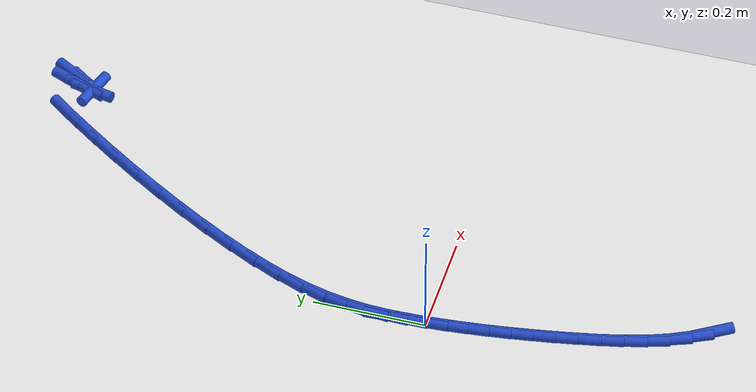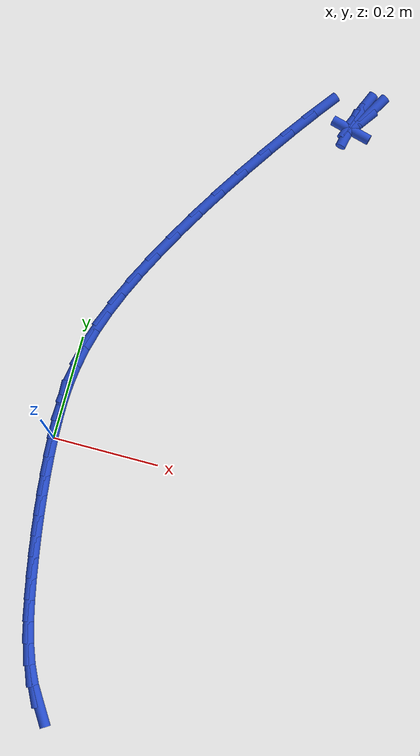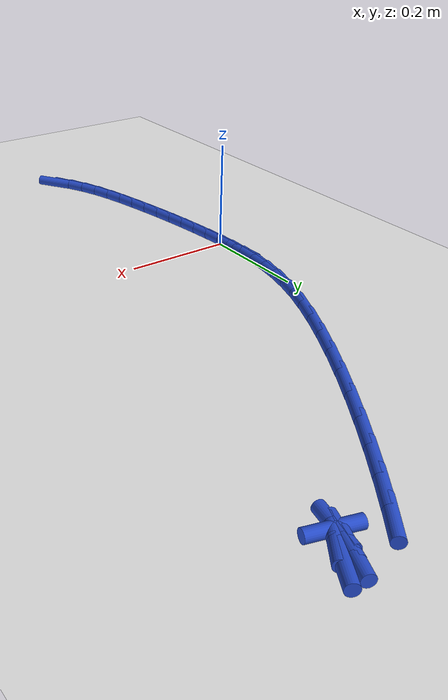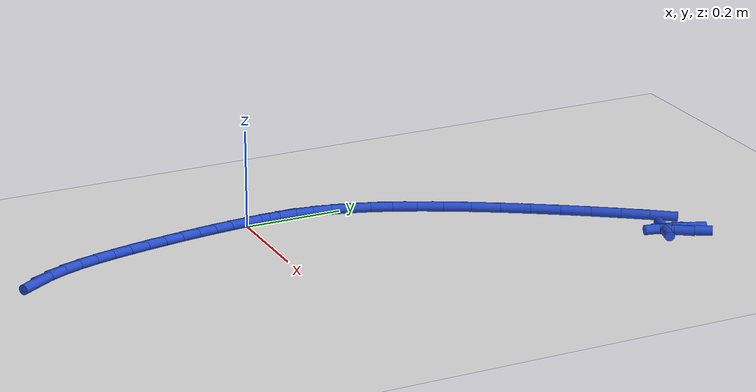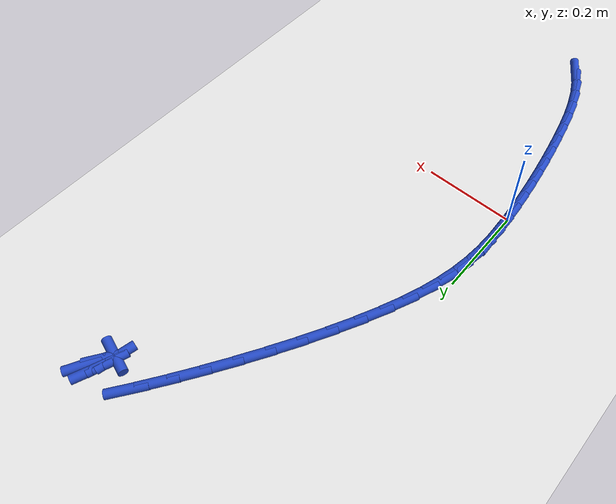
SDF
<sdf version="1.6">
 <world name="default">
  <model name="ground_plane">
   <static>1</static>
   <link name="link">
    <collision name="collision">
     <geometry><plane><normal>0 0 1</normal><size>100 100</size></plane></geometry>
     <surface><friction><ode><mu>100</mu><mu2>50</mu2></ode></friction></surface>
    </collision>
    <visual name="visual">
     <cast_shadows>0</cast_shadows>
     <geometry><plane><normal>0 0 1</normal><size>100 100</size></plane></geometry>
     <material>
      <script><uri>file://media/materials/scripts/gazebo.material</uri><name>Gazebo/WhiteGlow</name></script>
     </material>
    </visual>
   </link>
  </model>
  <model name="line">
   <link name="link_0">
    <pose>2.0721814021629203e-17 4.163336342344337e-17 0.01 0 1.57 -1.5221960477817953</pose>
    <collision name="collision">
     <geometry><cylinder><radius>0.01</radius><length>0.08</length></cylinder></geometry>
    </collision>
    <visual name="visual">
     <material>
      <script><name>Gazebo/Blue</name><uri>file://media/materials/scripts/gazebo.material</uri></script>
     </material>
     <geometry><cylinder><radius>0.01</radius><length>0.08</length></cylinder></geometry>
    </visual>
   </link>
   <link name="link_1">
    <pose>-0.0016862516358424058 0.03466901478903752 0.01 0 1.57 -1.5606301533697617</pose>
    <collision name="collision">
     <geometry><cylinder><radius>0.01</radius><length>0.08</length></cylinder></geometry>
    </collision>
    <visual name="visual">
     <material>
      <script><name>Gazebo/Blue</name><uri>file://media/materials/scripts/gazebo.material</uri></script>
     </material>
     <geometry><cylinder><radius>0.01</radius><length>0.08</length></cylinder></geometry>
    </visual>
   </link>
   <link name="link_2">
    <pose>-0.0020366260753943615 0.06913255916225572 0.01 0 1.57 1.5277477523856136</pose>
    <collision name="collision">
     <geometry><cylinder><radius>0.01</radius><length>0.08</length></cylinder></geometry>
    </collision>
    <visual name="visual">
     <material>
      <script><name>Gazebo/Blue</name><uri>file://media/materials/scripts/gazebo.material</uri></script>
     </material>
     <geometry><cylinder><radius>0.01</radius><length>0.08</length></cylinder></geometry>
    </visual>
   </link>
   <link name="link_3">
    <pose>-0.0005349769415345087 0.10399367666121621 0.01 0 1.57 1.4633028487802766</pose>
    <collision name="collision">
     <geometry><cylinder><radius>0.01</radius><length>0.08</length></cylinder></geometry>
    </collision>
    <visual name="visual">
     <material>
      <script><name>Gazebo/Blue</name><uri>file://media/materials/scripts/gazebo.material</uri></script>
     </material>
     <geometry><cylinder><radius>0.01</radius><length>0.08</length></cylinder></geometry>
    </visual>
   </link>
   <link name="link_4">
    <pose>0.003334842142858487 0.13985541082748057 0.01 0 1.57 1.3924354433942654</pose>
    <collision name="collision">
     <geometry><cylinder><radius>0.01</radius><length>0.08</length></cylinder></geometry>
    </collision>
    <visual name="visual">
     <material>
      <script><name>Gazebo/Blue</name><uri>file://media/materials/scripts/gazebo.material</uri></script>
     </material>
     <geometry><cylinder><radius>0.01</radius><length>0.08</length></cylinder></geometry>
    </visual>
   </link>
   <link name="link_5">
    <pose>0.010088977554905957 0.1773208052026104 0.01 0 1.57 1.3202131406118476</pose>
    <collision name="collision">
     <geometry><cylinder><radius>0.01</radius><length>0.08</length></cylinder></geometry>
    </collision>
    <visual name="visual">
     <material>
      <script><name>Gazebo/Blue</name><uri>file://media/materials/scripts/gazebo.material</uri></script>
     </material>
     <geometry><cylinder><radius>0.01</radius><length>0.08</length></cylinder></geometry>
    </visual>
   </link>
   <link name="link_6">
    <pose>0.02024357567172924 0.21699290332816729 0.01 0 1.57 1.250941128274026</pose>
    <collision name="collision">
     <geometry><cylinder><radius>0.01</radius><length>0.08</length></cylinder></geometry>
    </collision>
    <visual name="visual">
     <material>
      <script><name>Gazebo/Blue</name><uri>file://media/materials/scripts/gazebo.material</uri></script>
     </material>
     <geometry><cylinder><radius>0.01</radius><length>0.08</length></cylinder></geometry>
    </visual>
   </link>
   <link name="link_7">
    <pose>0.034314782269369085 0.25947474802827686 0.01 0 1.57 1.1894129266577556</pose>
    <collision name="collision">
     <geometry><cylinder><radius>0.01</radius><length>0.08</length></cylinder></geometry>
    </collision>
    <visual name="visual">
     <material>
      <script><name>Gazebo/Blue</name><uri>file://media/materials/scripts/gazebo.material</uri></script>
     </material>
     <geometry><cylinder><radius>0.01</radius><length>0.08</length></cylinder></geometry>
    </visual>
   </link>
   <link name="link_8">
    <pose>0.05262808580988069 0.3051418179813442 0.01 0 1.57 1.1412424033178985</pose>
    <collision name="collision">
     <geometry><cylinder><radius>0.01</radius><length>0.08</length></cylinder></geometry>
    </collision>
    <visual name="visual">
     <material>
      <script><name>Gazebo/Blue</name><uri>file://media/materials/scripts/gazebo.material</uri></script>
     </material>
     <geometry><cylinder><radius>0.01</radius><length>0.08</length></cylinder></geometry>
    </visual>
   </link>
   <link name="link_9">
    <pose>0.07477963477600573 0.35349906859098795 0.01 0 1.57 1.1033511119911708</pose>
    <collision name="collision">
     <geometry><cylinder><radius>0.01</radius><length>0.08</length></cylinder></geometry>
    </collision>
    <visual name="visual">
     <material>
      <script><name>Gazebo/Blue</name><uri>file://media/materials/scripts/gazebo.material</uri></script>
     </material>
     <geometry><cylinder><radius>0.01</radius><length>0.08</length></cylinder></geometry>
    </visual>
   </link>
   <link name="link_10">
    <pose>0.10019120475483431 0.4038433278189455 0.01 0 1.57 1.0724564933578629</pose>
    <collision name="collision">
     <geometry><cylinder><radius>0.01</radius><length>0.08</length></cylinder></geometry>
    </collision>
    <visual name="visual">
     <material>
      <script><name>Gazebo/Blue</name><uri>file://media/materials/scripts/gazebo.material</uri></script>
     </material>
     <geometry><cylinder><radius>0.01</radius><length>0.08</length></cylinder></geometry>
    </visual>
   </link>
   <link name="link_11">
    <pose>0.1282845713334565 0.45547142362695414 0.01 0 1.57 1.0464193403920221</pose>
    <collision name="collision">
     <geometry><cylinder><radius>0.01</radius><length>0.08</length></cylinder></geometry>
    </collision>
    <visual name="visual">
     <material>
      <script><name>Gazebo/Blue</name><uri>file://media/materials/scripts/gazebo.material</uri></script>
     </material>
     <geometry><cylinder><radius>0.01</radius><length>0.08</length></cylinder></geometry>
    </visual>
   </link>
   <link name="link_12">
    <pose>0.15848151009896239 0.5076801839767512 0.01 0 1.57 1.0237608191480843</pose>
    <collision name="collision">
     <geometry><cylinder><radius>0.01</radius><length>0.08</length></cylinder></geometry>
    </collision>
    <visual name="visual">
     <material>
      <script><name>Gazebo/Blue</name><uri>file://media/materials/scripts/gazebo.material</uri></script>
     </material>
     <geometry><cylinder><radius>0.01</radius><length>0.08</length></cylinder></geometry>
    </visual>
   </link>
   <link name="link_13">
    <pose>0.19020379663844192 0.5597664368300735 0.01 0 1.57 1.0033864025507215</pose>
    <collision name="collision">
     <geometry><cylinder><radius>0.01</radius><length>0.08</length></cylinder></geometry>
    </collision>
    <visual name="visual">
     <material>
      <script><name>Gazebo/Blue</name><uri>file://media/materials/scripts/gazebo.material</uri></script>
     </material>
     <geometry><cylinder><radius>0.01</radius><length>0.08</length></cylinder></geometry>
    </visual>
   </link>
   <link name="link_14">
    <pose>0.22287320653898524 0.6110270101486587 0.01 0 1.57 0.9844126843384529</pose>
    <collision name="collision">
     <geometry><cylinder><radius>0.01</radius><length>0.08</length></cylinder></geometry>
    </collision>
    <visual name="visual">
     <material>
      <script><name>Gazebo/Blue</name><uri>file://media/materials/scripts/gazebo.material</uri></script>
     </material>
     <geometry><cylinder><radius>0.01</radius><length>0.08</length></cylinder></geometry>
    </visual>
   </link>
   <link name="link_15">
    <pose>0.2559115153876824 0.660758731894244 0.01 0 1.57 0.9660408560285011</pose>
    <collision name="collision">
     <geometry><cylinder><radius>0.01</radius><length>0.08</length></cylinder></geometry>
    </collision>
    <visual name="visual">
     <material>
      <script><name>Gazebo/Blue</name><uri>file://media/materials/scripts/gazebo.material</uri></script>
     </material>
     <geometry><cylinder><radius>0.01</radius><length>0.08</length></cylinder></geometry>
    </visual>
   </link>
   <link name="link_16">
    <pose>0.28874049877162355 0.7082584300285664 0.01 0 1.57 0.9474387387243113</pose>
    <collision name="collision">
     <geometry><cylinder><radius>0.01</radius><length>0.08</length></cylinder></geometry>
    </collision>
    <visual name="visual">
     <material>
      <script><name>Gazebo/Blue</name><uri>file://media/materials/scripts/gazebo.material</uri></script>
     </material>
     <geometry><cylinder><radius>0.01</radius><length>0.08</length></cylinder></geometry>
    </visual>
   </link>
   <link name="link_17">
    <pose>0.3207819322778985 0.752822932513363 0.01 0 1.57 0.9275914956249187</pose>
    <collision name="collision">
     <geometry><cylinder><radius>0.01</radius><length>0.08</length></cylinder></geometry>
    </collision>
    <visual name="visual">
     <material>
      <script><name>Gazebo/Blue</name><uri>file://media/materials/scripts/gazebo.material</uri></script>
     </material>
     <geometry><cylinder><radius>0.01</radius><length>0.08</length></cylinder></geometry>
    </visual>
   </link>
   <link name="link_30">
    <pose>0.4175573684938185 0.7720504553694052 0.01 0 1.57 1.0495907408312326</pose>
    <collision name="collision">
     <geometry><cylinder><radius>0.01</radius><length>0.08</length></cylinder></geometry>
    </collision>
    <visual name="visual">
     <material>
      <script><name>Gazebo/Blue</name><uri>file://media/materials/scripts/gazebo.material</uri></script>
     </material>
     <geometry><cylinder><radius>0.01</radius><length>0.08</length></cylinder></geometry>
    </visual>
   </link>
   <link name="link_31">
    <pose>0.40026678510043573 0.7419360785899481 0.01 0 1.57 0.9519673105431965</pose>
    <collision name="collision">
     <geometry><cylinder><radius>0.01</radius><length>0.08</length></cylinder></geometry>
    </collision>
    <visual name="visual">
     <material>
      <script><name>Gazebo/Blue</name><uri>file://media/materials/scripts/gazebo.material</uri></script>
     </material>
     <geometry><cylinder><radius>0.01</radius><length>0.08</length></cylinder></geometry>
    </visual>
   </link>
   <link name="link_32">
    <pose>0.38894983859831506 0.726044675515083 0.01 0 1.57 -0.2719744744640523</pose>
    <collision name="collision">
     <geometry><cylinder><radius>0.01</radius><length>0.08</length></cylinder></geometry>
    </collision>
    <visual name="visual">
     <material>
      <script><name>Gazebo/Blue</name><uri>file://media/materials/scripts/gazebo.material</uri></script>
     </material>
     <geometry><cylinder><radius>0.01</radius><length>0.08</length></cylinder></geometry>
    </visual>
   </link>
   <link name="link_33">
    <pose>0.38530254700189565 0.7270618504696597 0.01 0 1.57 1.3545416241763109</pose>
    <collision name="collision">
     <geometry><cylinder><radius>0.01</radius><length>0.08</length></cylinder></geometry>
    </collision>
    <visual name="visual">
     <material>
      <script><name>Gazebo/Blue</name><uri>file://media/materials/scripts/gazebo.material</uri></script>
     </material>
     <geometry><cylinder><radius>0.01</radius><length>0.08</length></cylinder></geometry>
    </visual>
   </link>
   <link name="link_34">
    <pose>0.3887319720929825 0.7426721347979673 0.01 0 1.57 1.2303765464891425</pose>
    <collision name="collision">
     <geometry><cylinder><radius>0.01</radius><length>0.08</length></cylinder></geometry>
    </collision>
    <visual name="visual">
     <material>
      <script><name>Gazebo/Blue</name><uri>file://media/materials/scripts/gazebo.material</uri></script>
     </material>
     <geometry><cylinder><radius>0.01</radius><length>0.08</length></cylinder></geometry>
    </visual>
   </link>
   <link name="link_35">
    <pose>0.39849018847131423 0.7702214329201479 0.01 0 1.57 1.1762020324536666</pose>
    <collision name="collision">
     <geometry><cylinder><radius>0.01</radius><length>0.08</length></cylinder></geometry>
    </collision>
    <visual name="visual">
     <material>
      <script><name>Gazebo/Blue</name><uri>file://media/materials/scripts/gazebo.material</uri></script>
     </material>
     <geometry><cylinder><radius>0.01</radius><length>0.08</length></cylinder></geometry>
    </visual>
   </link>
   <link name="link_227">
    <pose>0.11107693716835519 -0.47293077264494005 0.01 0 1.57 -1.0057585121942003</pose>
    <collision name="collision">
     <geometry><cylinder><radius>0.01</radius><length>0.08</length></cylinder></geometry>
    </collision>
    <visual name="visual">
     <material>
      <script><name>Gazebo/Blue</name><uri>file://media/materials/scripts/gazebo.material</uri></script>
     </material>
     <geometry><cylinder><radius>0.01</radius><length>0.08</length></cylinder></geometry>
    </visual>
   </link>
   <link name="link_228">
    <pose>0.09144050160352846 -0.441957980353312 0.01 0 1.57 -1.1218049921289097</pose>
    <collision name="collision">
     <geometry><cylinder><radius>0.01</radius><length>0.08</length></cylinder></geometry>
    </collision>
    <visual name="visual">
     <material>
      <script><name>Gazebo/Blue</name><uri>file://media/materials/scripts/gazebo.material</uri></script>
     </material>
     <geometry><cylinder><radius>0.01</radius><length>0.08</length></cylinder></geometry>
    </visual>
   </link>
   <link name="link_229">
    <pose>0.075275684926083 -0.40840790541877275 0.01 0 1.57 -1.2142880719714424</pose>
    <collision name="collision">
     <geometry><cylinder><radius>0.01</radius><length>0.08</length></cylinder></geometry>
    </collision>
    <visual name="visual">
     <material>
      <script><name>Gazebo/Blue</name><uri>file://media/materials/scripts/gazebo.material</uri></script>
     </material>
     <geometry><cylinder><radius>0.01</radius><length>0.08</length></cylinder></geometry>
    </visual>
   </link>
   <link name="link_230">
    <pose>0.06202508056725976 -0.3728283262337364 0.01 0 1.57 -1.2849084307810708</pose>
    <collision name="collision">
     <geometry><cylinder><radius>0.01</radius><length>0.08</length></cylinder></geometry>
    </collision>
    <visual name="visual">
     <material>
      <script><name>Gazebo/Blue</name><uri>file://media/materials/scripts/gazebo.material</uri></script>
     </material>
     <geometry><cylinder><radius>0.01</radius><length>0.08</length></cylinder></geometry>
    </visual>
   </link>
   <link name="link_231">
    <pose>0.05113128195830073 -0.33576702119061974 0.01 0 1.57 -1.3358601674941417</pose>
    <collision name="collision">
     <geometry><cylinder><radius>0.01</radius><length>0.08</length></cylinder></geometry>
    </collision>
    <visual name="visual">
     <material>
      <script><name>Gazebo/Blue</name><uri>file://media/materials/scripts/gazebo.material</uri></script>
     </material>
     <geometry><cylinder><radius>0.01</radius><length>0.08</length></cylinder></geometry>
    </visual>
   </link>
   <link name="link_232">
    <pose>0.04203688253044671 -0.29777176868183636 0.01 0 1.57 -1.3689924322918723</pose>
    <collision name="collision">
     <geometry><cylinder><radius>0.01</radius><length>0.08</length></cylinder></geometry>
    </collision>
    <visual name="visual">
     <material>
      <script><name>Gazebo/Blue</name><uri>file://media/materials/scripts/gazebo.material</uri></script>
     </material>
     <geometry><cylinder><radius>0.01</radius><length>0.08</length></cylinder></geometry>
    </visual>
   </link>
   <link name="link_233">
    <pose>0.03418447571493899 -0.25939034709980135 0.01 0 1.57 -1.3880762432259421</pose>
    <collision name="collision">
     <geometry><cylinder><radius>0.01</radius><length>0.08</length></cylinder></geometry>
    </collision>
    <visual name="visual">
     <material>
      <script><name>Gazebo/Blue</name><uri>file://media/materials/scripts/gazebo.material</uri></script>
     </material>
     <geometry><cylinder><radius>0.01</radius><length>0.08</length></cylinder></geometry>
    </visual>
   </link>
   <link name="link_234">
    <pose>0.0271087419693576 -0.22109782437610118 0.01 0 1.57 -1.4046134441222966</pose>
    <collision name="collision">
     <geometry><cylinder><radius>0.01</radius><length>0.08</length></cylinder></geometry>
    </collision>
    <visual name="visual">
     <material>
      <script><name>Gazebo/Blue</name><uri>file://media/materials/scripts/gazebo.material</uri></script>
     </material>
     <geometry><cylinder><radius>0.01</radius><length>0.08</length></cylinder></geometry>
    </visual>
   </link>
   <link name="link_235">
    <pose>0.020729529122816687 -0.18306514637221494 0.01 0 1.57 -1.4216481697125938</pose>
    <collision name="collision">
     <geometry><cylinder><radius>0.01</radius><length>0.08</length></cylinder></geometry>
    </collision>
    <visual name="visual">
     <material>
      <script><name>Gazebo/Blue</name><uri>file://media/materials/scripts/gazebo.material</uri></script>
     </material>
     <geometry><cylinder><radius>0.01</radius><length>0.08</length></cylinder></geometry>
    </visual>
   </link>
   <link name="link_236">
    <pose>0.01506737189747682 -0.14538375816993726 0.01 0 1.57 -1.4393158315246337</pose>
    <collision name="collision">
     <geometry><cylinder><radius>0.01</radius><length>0.08</length></cylinder></geometry>
    </collision>
    <visual name="visual">
     <material>
      <script><name>Gazebo/Blue</name><uri>file://media/materials/scripts/gazebo.material</uri></script>
     </material>
     <geometry><cylinder><radius>0.01</radius><length>0.08</length></cylinder></geometry>
    </visual>
   </link>
   <link name="link_237">
    <pose>0.010142805332931609 -0.10814510460042252 0.01 0 1.57 -1.457766979248189</pose>
    <collision name="collision">
     <geometry><cylinder><radius>0.01</radius><length>0.08</length></cylinder></geometry>
    </collision>
    <visual name="visual">
     <material>
      <script><name>Gazebo/Blue</name><uri>file://media/materials/scripts/gazebo.material</uri></script>
     </material>
     <geometry><cylinder><radius>0.01</radius><length>0.08</length></cylinder></geometry>
    </visual>
   </link>
   <link name="link_238">
    <pose>0.005976364468774571 -0.07144063049482433 0.01 0 1.57 -1.477171510490638</pose>
    <collision name="collision">
     <geometry><cylinder><radius>0.01</radius><length>0.08</length></cylinder></geometry>
    </collision>
    <visual name="visual">
     <material>
      <script><name>Gazebo/Blue</name><uri>file://media/materials/scripts/gazebo.material</uri></script>
     </material>
     <geometry><cylinder><radius>0.01</radius><length>0.08</length></cylinder></geometry>
    </visual>
   </link>
   <link name="link_239">
    <pose>0.0025885843445995495 -0.03536178068429903 0.01 0 1.57 -1.4977237800734942</pose>
    <collision name="collision">
     <geometry><cylinder><radius>0.01</radius><length>0.08</length></cylinder></geometry>
    </collision>
    <visual name="visual">
     <material>
      <script><name>Gazebo/Blue</name><uri>file://media/materials/scripts/gazebo.material</uri></script>
     </material>
     <geometry><cylinder><radius>0.01</radius><length>0.08</length></cylinder></geometry>
    </visual>
   </link>
   <link name="link_240">
    <pose>3.97089045672816e-17 -1.3183898417423734e-16 0.01 0 1.57 -1.5196488970910138</pose>
    <collision name="collision">
     <geometry><cylinder><radius>0.01</radius><length>0.08</length></cylinder></geometry>
    </collision>
    <visual name="visual">
     <material>
      <script><name>Gazebo/Blue</name><uri>file://media/materials/scripts/gazebo.material</uri></script>
     </material>
     <geometry><cylinder><radius>0.01</radius><length>0.08</length></cylinder></geometry>
    </visual>
   </link>
   <link name="link_241">
    <pose>-0.001768853525430339 0.03455326672691791 0.01 0 1.57 -1.5432105657558628</pose>
    <collision name="collision">
     <geometry><cylinder><radius>0.01</radius><length>0.08</length></cylinder></geometry>
    </collision>
    <visual name="visual">
     <material>
      <script><name>Gazebo/Blue</name><uri>file://media/materials/scripts/gazebo.material</uri></script>
     </material>
     <geometry><cylinder><radius>0.01</radius><length>0.08</length></cylinder></geometry>
    </visual>
   </link>
   <link name="link_242">
    <pose>-0.0026974411920979665 0.0682065746653006 0.01 0 1.57 -1.5312688148235052</pose>
    <collision name="collision">
     <geometry><cylinder><radius>0.01</radius><length>0.08</length></cylinder></geometry>
    </collision>
    <visual name="visual">
     <material>
      <script><name>Gazebo/Blue</name><uri>file://media/materials/scripts/gazebo.material</uri></script>
     </material>
     <geometry><cylinder><radius>0.01</radius><length>0.08</length></cylinder></geometry>
    </visual>
   </link>
  </model>
 </world>
</sdf>
